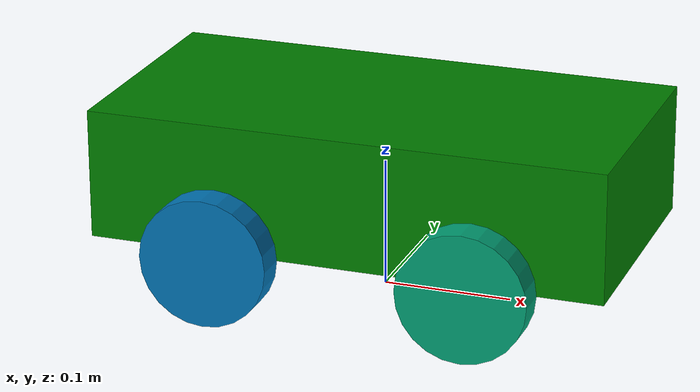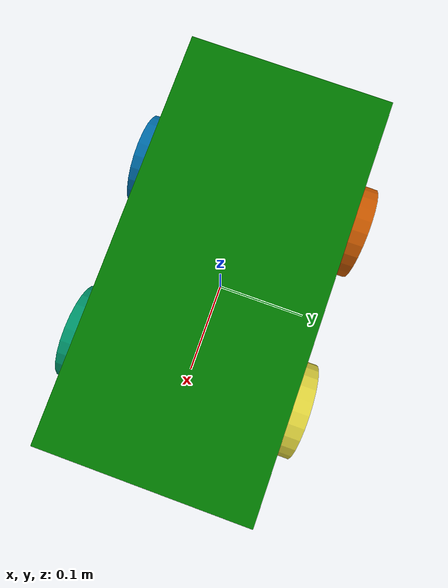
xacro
<?xml version="1.0"?>

<robot xmlns:xacro="http://www.ros.org/wiki/xacro" name='four_wheel_robot'>

                <!-- Variables  -->
    <xacro:property name='base_length' value='0.4'/>
    <xacro:property name='base_width' value='0.2'/>
    <xacro:property name='base_height' value='0.1'/>

    <xacro:property name='wheel_radius' value='${base_height/2.0}'/>
    <xacro:property name='wheel_length' value='${base_height/4.0}'/>

                        <!-- Function for creating wheels -->
    <xacro:macro name='wheel_link' params='prefix'>
    <link name="${prefix}_wheel_link">
        <visual>
            <geometry>
                <cylinder radius="${wheel_radius}" length="${wheel_length}"/>
            </geometry>
            <origin xyz="0.0 0.0 0.0" rpy="0.0 0.0 0.0"/>
        </visual>
    </link>

    </xacro:macro>

    <material name='green'>
        <color rgba="0.0 0.5 0.0 1.0"/>
    </material>

            <!-- Base Foot -->
    <link name="foot"></link>
    <link name="base_link">
        <visual>
            <geometry>
                <box size="${base_length} ${base_width} ${base_height}"/>
            </geometry>
            <origin xyz="0.0 0.0 ${base_height/2.0}" rpy="0.0 0.0 0.0"/>
            <material name="green"/>
        </visual>
    </link>
    <joint name="base_foot" type="fixed">
        <parent link="foot"/>
        <child link="base_link"/>
        <origin xyz="0.0 0 ${base_height/2.0}" rpy="0 0.0 0.0"/>
    </joint>

        <!-- Front Left Wheel -->
    <xacro:wheel_link prefix='front_left'/>
    <joint name="base_front_left_wheel_joint" type="continuous">
        <parent link="base_link"/>
        <child link="front_left_wheel_link"/>
        <origin xyz="${base_length/4.0} ${-base_width/2.0 + -wheel_length/2.0} 0.0" rpy="${pi/2.0} 0.0 0.0"/>
        <axis xyz="0.0 0 1"/>
    </joint>

        <!-- Front Right Wheel -->
    <xacro:wheel_link prefix='front_right'/>
    <joint name="base_front_right_wheel_joint" type="continuous">
        <parent link="base_link"/>
        <child link="front_right_wheel_link"/>
        <origin xyz="${base_length/4.0} ${base_width/2.0 + wheel_length/2.0} 0.0" rpy="${pi/2.0} 0.0 0.0"/>
        <axis xyz="0.0 0 1"/>
    </joint>

            <!-- Back left Wheel -->
    <xacro:wheel_link prefix='back_left'/>
    <joint name="base_back_left_wheel_joint" type="continuous">
        <parent link="base_link"/>
        <child link="back_left_wheel_link"/>
        <origin xyz="${-base_length/4.0} ${-base_width/2.0 + -wheel_length/2.0} 0.0" rpy="${pi/2.0} 0.0 0.0"/>
        <axis xyz="0.0 0 1"/>
    </joint>

             <!-- Back right Wheel -->
    <xacro:wheel_link prefix='back_right'/>
    <joint name="base_back_right_wheel_joint" type="continuous">
        <parent link="base_link"/>
        <child link="back_right_wheel_link"/>
        <origin xyz="${-base_length/4.0} ${base_width/2.0 + wheel_length/2.0} 0.0" rpy="${pi/2.0} 0.0 0.0"/>
        <axis xyz="0.0 0 1"/>
    </joint>

</robot>
